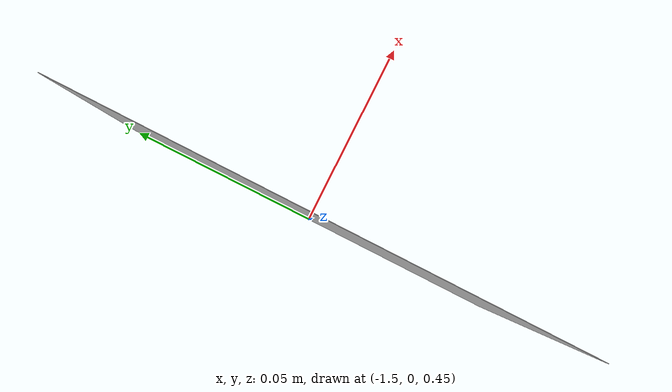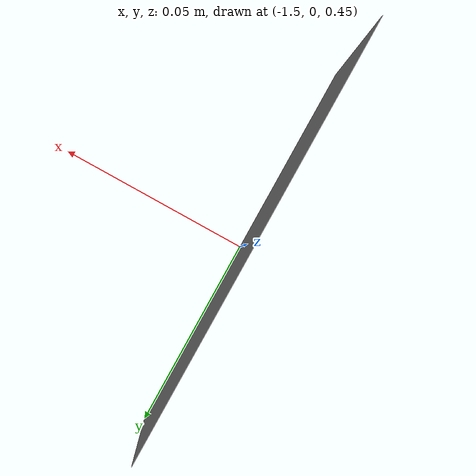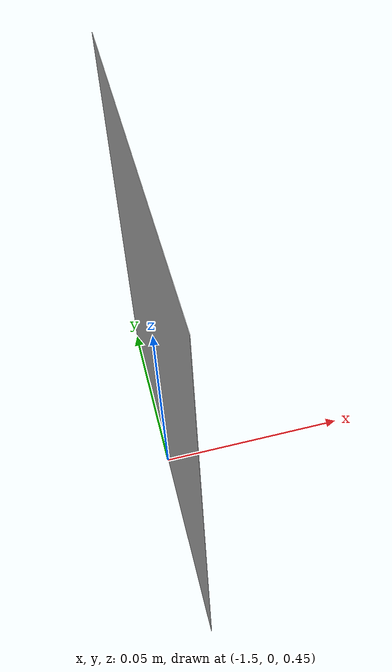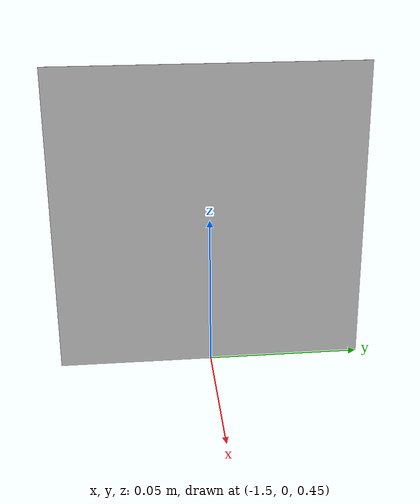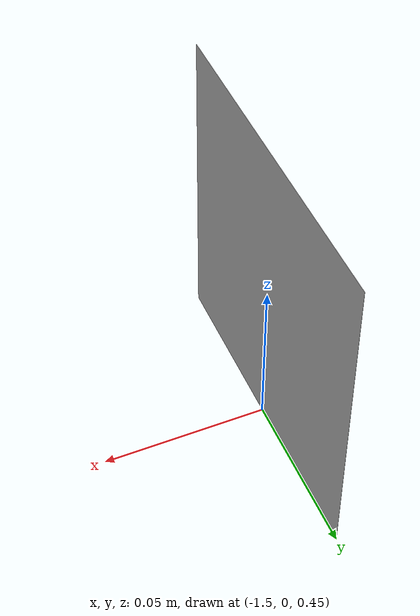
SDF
<sdf version="1.7">
 <world name="nyu_world">
  <light name="sun" type="directional">
   <pose>0 0 10 0 -0 0</pose>
   <diffuse>0.8 0.8 0.8 1</diffuse>
   <specular>0.2 0.2 0.2 1</specular>
   <attenuation>
    <range>1000</range>
    <constant>0.9</constant>
    <linear>0.01</linear>
    <quadratic>0.001</quadratic>
   </attenuation>
   <direction>-0.5 0.1 -0.9</direction>
   <spot><inner_angle>0</inner_angle><outer_angle>0</outer_angle><falloff>0</falloff></spot>
  </light>
  <include><uri>model://Apriltag36_11_00000</uri><pose>-1.5 0 0.5 0 1.57 3.14</pose></include>
  <model name="arena_plane">
   <static>1</static>
   <link name="link">
    <collision name="collision">
     <geometry><plane><normal>0 0 1</normal><size>100 100</size></plane></geometry>
     <surface>
      <friction>
       <ode>
        <mu>50.000000</mu>
        <mu2>50.000000</mu2>
        <fdir1>0.000000 1.000000 0.000000</fdir1>
        <slip1>0.0100000</slip1>
        <slip2>0.0100000</slip2>
       </ode>
      </friction>
      <bounce>
       <restitution_coefficient>0.000000</restitution_coefficient>
       <threshold>100000.000000</threshold>
      </bounce>
      <contact>
       <ode>
        <soft_cfm>0.000000</soft_cfm>
        <soft_erp>0.200000</soft_erp>
        <kp>1000000000.000000</kp>
        <kd>1.000000</kd>
        <max_vel>100.000000</max_vel>
        <min_depth>0.001000</min_depth>
       </ode>
      </contact>
     </surface>
    </collision>
    <visual name="visual">
     <cast_shadows>0</cast_shadows>
     <geometry><plane><normal>0 0 1</normal><size>100 100</size></plane></geometry>
     <material>
      <script><uri>file://media/materials/scripts/gazebo.material</uri><name>Gazebo/Grey</name></script>
     </material>
    </visual>
   </link>
  </model>
  <gravity>0 0 -9.8</gravity>
  <magnetic_field>6e-06 2.3e-05 -4.2e-05</magnetic_field>
  <atmosphere type="adiabatic"/>
  <physics type="ode">
   <max_step_size>0.001</max_step_size>
   <real_time_factor>1</real_time_factor>
   <real_time_update_rate>1000</real_time_update_rate>
  </physics>
  <scene><ambient>0.4 0.4 0.4 1</ambient><background>0.7 0.7 0.7 1</background><shadows>1</shadows></scene>
  <spherical_coordinates>
   <surface_model>EARTH_WGS84</surface_model>
   <latitude_deg>0</latitude_deg>
   <longitude_deg>0</longitude_deg>
   <elevation>0</elevation>
   <heading_deg>0</heading_deg>
  </spherical_coordinates>
 </world>
</sdf>

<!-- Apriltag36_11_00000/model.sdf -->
<sdf version='1.6'>
  <model name='Apriltag36_11_00000'>
    <link name="link">
      <inertial>
        <pose>0 0 0 0 0 0</pose>
        <mass>0.5</mass>
        <inertia>
          <ixx>0.0001</ixx>
          <ixy>0</ixy>
          <ixz>0</ixz>
          <iyy>0.0001</iyy>
          <iyz>0</iyz>
          <izz>0.0001</izz>
        </inertia>
      </inertial>
      <collision name="collision">
        <pose>0 0 0 0 0 0</pose>
        <geometry>
          <mesh>
            <uri>model://Apriltag36_11_00000/meshes/tag36_11_00000.dae</uri>
          </mesh>
        </geometry>
        <surface>
          <friction>
            <ode>
              <mu>1.0</mu>
              <mu2>1.0</mu2>
            </ode>
          </friction>
          <contact>
            <ode>
              <kp>10000000.0</kp>
              <kd>1.0</kd>
              <min_depth>0.001</min_depth>
              <max_vel>0.1</max_vel>
            </ode>
          </contact>
        </surface>
      </collision>
      <visual name="visual">
        <pose>0 0 0 0 0 0</pose>
        <geometry>
          <mesh>
            <uri>model://Apriltag36_11_00000/meshes/tag36_11_00000.dae</uri>
          </mesh>
        </geometry>
      </visual>
    </link>
  </model>
</sdf>
